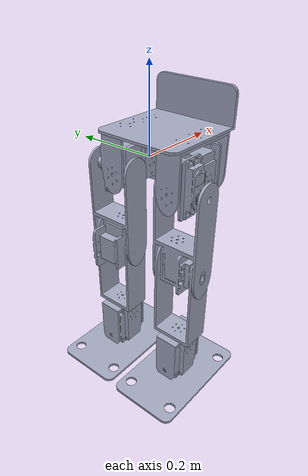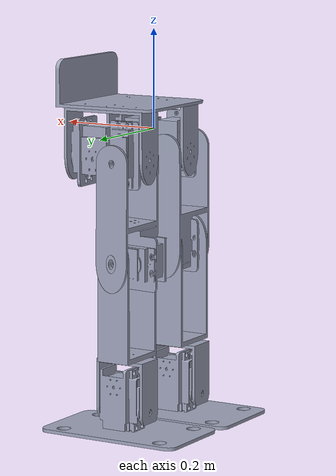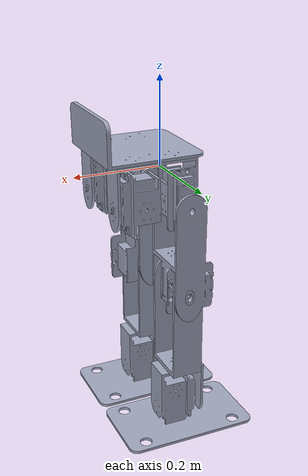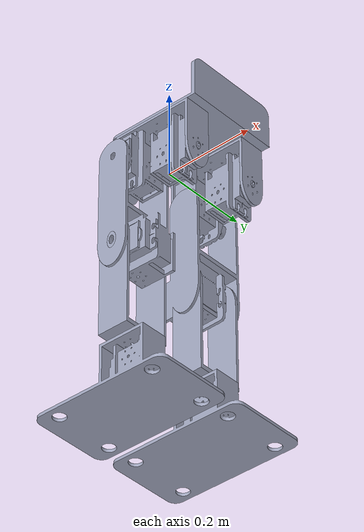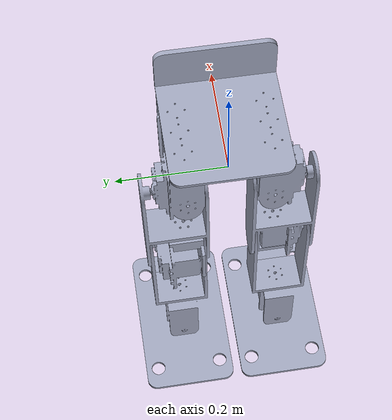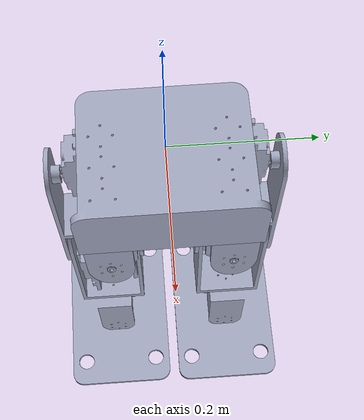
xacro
<?xml version="1.0"?>
<robot name="biped_payload_bot" xmlns:xacro="http://www.ros.org/wiki/xacro">

  <xacro:arg name="with_payload" default="true"/>
  <xacro:property name="with_payload" value="$(arg with_payload)"/>

  <!-- Appearance from Robot.STEP; all simulation parameters stay original. -->
  <xacro:include filename="cad_visuals.xacro"/>

  <xacro:include filename="inertia.xacro"/>
  <xacro:include filename="base.xacro"/>
  <xacro:include filename="leg.xacro"/>
  <xacro:include filename="sensors.xacro"/>
  <xacro:include filename="ros2_control.xacro"/>

  <!-- Hip lateral separation (ASSUMPTION, PROJECT_REQUIREMENTS §3;
       Robot.png comparison reads ~0.20 m) -->
  <xacro:property name="hip_y" value="0.10"/>

  <!-- Controllers YAML consumed by the gz_ros2_control plugin (M5). -->
  <xacro:property name="controllers_file"
                  value="$(find biped_control)/config/biped_controllers.yaml"/>

  <xacro:base with_payload="$(arg with_payload)"/>

  <xacro:leg prefix="left" hip_y="${hip_y}"/>
  <xacro:leg prefix="right" hip_y="${-hip_y}"/>

  <!-- M8 sensors (PROJECT_REQUIREMENTS §6): pelvis IMU + foot contacts.
       Topics match the ros_gz_bridge config in gazebo.launch.py. -->
  <xacro:imu_sensor imu_topic="/imu"/>
  <xacro:foot_contact_sensor prefix="left" contact_topic="/left_foot_contact"/>
  <xacro:foot_contact_sensor prefix="right" contact_topic="/right_foot_contact"/>

  <xacro:ros2_control_gazebo controllers_file="${controllers_file}"/>

</robot>

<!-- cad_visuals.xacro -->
<robot xmlns:xacro="http://www.ros.org/wiki/xacro">
  <!-- Robot.STEP tessellation fitted to the original simulation rig.
       Visual-only: never use these meshes for collision or inertia.
       See meshes/cad/manifest.json and docs/CAD_VISUALS.md. -->
  <!-- sdformat converts URDF colors with a 1.25 gain; compensate here
       so Gazebo receives the original STEP RGB values from manifest.json. -->
  <material name="cad_blue_grey">
    <color rgba="${0.8 * 0.792156862745098} ${0.8 * 0.819607843137255} ${0.8 * 0.933333333333333} 1"/>
  </material>
  <xacro:macro name="cad_visual" params="link">
    <visual name="${link}_cad_visual">
      <origin xyz="0 0 0" rpy="0 0 0"/>
      <geometry>
        <mesh filename="package://biped_description/meshes/cad/${link}.stl"/>
      </geometry>
      <material name="cad_blue_grey"/>
    </visual>
  </xacro:macro>
</robot>

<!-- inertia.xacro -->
<robot xmlns:xacro="http://www.ros.org/wiki/xacro">

  <xacro:property name="alu_density" value="2700.0"/>

  <xacro:macro name="box_inertial" params="m x y z ox:=0 oy:=0 oz:=0">
    <inertial>
      <mass value="${m}"/>
      <origin xyz="${ox} ${oy} ${oz}"/>
      <inertia ixx="${m*(y*y+z*z)/12.0}" ixy="0" ixz="0"
               iyy="${m*(x*x+z*z)/12.0}" iyz="0"
               izz="${m*(x*x+y*y)/12.0}"/>
    </inertial>
  </xacro:macro>

  <xacro:macro name="cylinder_inertial" params="m r h">
    <inertial>
      <mass value="${m}"/>
      <inertia ixx="${m*(3*r*r+h*h)/12.0}" ixy="0" ixz="0"
               iyy="${m*(3*r*r+h*h)/12.0}" iyz="0"
               izz="${m*r*r/2.0}"/>
    </inertial>
  </xacro:macro>

</robot>

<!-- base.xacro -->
<robot xmlns:xacro="http://www.ros.org/wiki/xacro">

  <xacro:property name="pelvis_w" value="0.20"/>
  <xacro:property name="pelvis_h" value="0.10"/>
  <xacro:property name="pelvis_d" value="0.20"/>
  <xacro:property name="pelvis_m" value="1.2"/>

  <xacro:property name="plat_w" value="0.28"/>
  <xacro:property name="plat_d" value="0.36"/>
  <xacro:property name="plat_t" value="0.03"/>
  <xacro:property name="plat_m" value="0.8"/>

  <xacro:property name="payload_w" value="0.14"/>
  <xacro:property name="payload_d" value="0.20"/>
  <xacro:property name="payload_h" value="0.11"/>
  <xacro:property name="payload_m" value="1.0"/>

  <!-- Height of pelvis frame above the hip roll axis -->
  <xacro:property name="pelvis_hip_drop" value="0.05"/>

  <xacro:macro name="base" params="with_payload:=true">
    <link name="base_link">
      <xacro:cad_visual link="base_link"/>
      <collision>
        <origin xyz="0 0 0"/>
        <geometry>
          <box size="${pelvis_w} ${pelvis_d} ${pelvis_h}"/>
        </geometry>
      </collision>
      <xacro:box_inertial m="${pelvis_m}" x="${pelvis_w}" y="${pelvis_d}" z="${pelvis_h}"/>
    </link>

    <joint name="platform_joint" type="fixed">
      <parent link="base_link"/>
      <child link="platform_link"/>
      <origin xyz="0 0 ${pelvis_h/2 + plat_t/2}"/>
    </joint>

    <link name="platform_link">
      <xacro:cad_visual link="platform_link"/>
      <collision>
        <origin xyz="0 0 0"/>
        <geometry>
          <box size="${plat_w} ${plat_d} ${plat_t}"/>
        </geometry>
      </collision>
      <xacro:box_inertial m="${plat_m}" x="${plat_w}" y="${plat_d}" z="${plat_t}"/>
    </link>

    <xacro:if value="${with_payload}">
      <joint name="payload_joint" type="fixed">
        <parent link="platform_link"/>
        <child link="payload_link"/>
        <origin xyz="0 0 ${plat_t/2 + payload_h/2}"/>
      </joint>

      <link name="payload_link">
        <!-- No payload object appears in Robot.STEP. Its physics is retained. -->
        <collision>
          <origin xyz="0 0 0"/>
          <geometry>
            <box size="${payload_w} ${payload_d} ${payload_h}"/>
          </geometry>
        </collision>
        <xacro:box_inertial m="${payload_m}" x="${payload_w}" y="${payload_d}" z="${payload_h}"/>
      </link>
    </xacro:if>
  </xacro:macro>

</robot>

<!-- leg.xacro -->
<robot xmlns:xacro="http://www.ros.org/wiki/xacro">

  <!-- Segment dimensions (ASSUMPTION) -->
  <xacro:property name="thigh_len" value="0.20"/>
  <xacro:property name="shin_len" value="0.20"/>
  <xacro:property name="ankle_h" value="0.15"/>

  <!-- Link cross-sections and masses (ASSUMPTION) -->
  <xacro:property name="thigh_w" value="0.06"/>
  <xacro:property name="thigh_d" value="0.05"/>
  <xacro:property name="thigh_m" value="0.55"/>
  <xacro:property name="shin_w" value="0.055"/>
  <xacro:property name="shin_d" value="0.045"/>
  <xacro:property name="shin_m" value="0.45"/>

  <!-- Foot: length X, width Y, height Z (ASSUMPTION) -->
  <xacro:property name="foot_len" value="0.16"/>
  <xacro:property name="foot_w" value="0.09"/>
  <xacro:property name="foot_h" value="0.03"/>
  <xacro:property name="foot_m" value="0.30"/>

  <!-- Actuator masses lumped into their parent links (ASSUMPTION) -->
  <xacro:property name="hip_act_m" value="0.40"/>
  <xacro:property name="knee_act_m" value="0.40"/>
  <xacro:property name="ankle_act_m" value="0.30"/>

  <xacro:property name="hip_roll_lim_deg" value="25"/>
  <xacro:property name="hip_pitch_lim_deg" value="90"/>
  <xacro:property name="knee_pitch_lim_deg" value="100"/>
  <xacro:property name="ankle_pitch_lim_deg" value="65"/>
  <xacro:property name="ankle_roll_lim_deg" value="25"/>
  <xacro:property name="joint_vel_lim" value="3.0"/>
  <xacro:property name="joint_eff_lim" value="40.0"/>

  <xacro:macro name="leg" params="prefix hip_y">

    <!-- hip_roll -> hip_pitch: co-located at the hip -->
    <joint name="${prefix}_hip_roll" type="revolute">
      <parent link="base_link"/>
      <child link="${prefix}_hip_pitch_link"/>
      <origin xyz="0 ${hip_y} ${-pelvis_hip_drop}"/>
      <axis xyz="1 0 0"/>
      <limit lower="${-hip_roll_lim_deg*pi/180.0}" upper="${hip_roll_lim_deg*pi/180.0}"
             effort="${joint_eff_lim}" velocity="${joint_vel_lim}"/>
      <!-- Passive damping/friction stand in for gearbox resistance until the
         drive controllers exist (M5). Values are ASSUMPTIONS. -->
      <dynamics damping="2.0" friction="1.0"/>
    </joint>

    <link name="${prefix}_hip_pitch_link">
      <xacro:cad_visual link="${prefix}_hip_pitch_link"/>
      <collision>
        <origin xyz="0 0 0"/>
        <geometry><cylinder radius="0.045" length="0.07"/></geometry>
      </collision>
      <xacro:cylinder_inertial m="${hip_act_m}" r="0.045" h="0.07"/>
    </link>

    <joint name="${prefix}_hip_pitch" type="revolute">
      <parent link="${prefix}_hip_pitch_link"/>
      <child link="${prefix}_thigh"/>
      <origin xyz="0 0 0"/>
      <axis xyz="0 1 0"/>
      <limit lower="${-hip_pitch_lim_deg*pi/180.0}" upper="${hip_pitch_lim_deg*pi/180.0}"
             effort="${joint_eff_lim}" velocity="${joint_vel_lim}"/>
      <dynamics damping="2.0" friction="1.0"/>
    </joint>

    <!-- Thigh: from hip down to knee -->
    <link name="${prefix}_thigh">
      <xacro:cad_visual link="${prefix}_thigh"/>
      <collision>
        <origin xyz="0 0 ${-thigh_len/2}"/>
        <geometry><box size="${thigh_w} ${thigh_d} ${thigh_len}"/></geometry>
      </collision>
      <xacro:box_inertial m="${thigh_m + knee_act_m}" x="${thigh_w}" y="${thigh_d}" z="${thigh_len}"
                          ox="0" oy="0" oz="${-thigh_len/2}"/>
    </link>

    <joint name="${prefix}_knee" type="revolute">
      <parent link="${prefix}_thigh"/>
      <child link="${prefix}_shin"/>
      <origin xyz="0 0 ${-thigh_len}"/>
      <axis xyz="0 1 0"/>
      <limit lower="0" upper="${knee_pitch_lim_deg*pi/180.0}"
             effort="${joint_eff_lim}" velocity="${joint_vel_lim}"/>
      <dynamics damping="2.0" friction="1.0"/>
    </joint>

    <!-- Shin: from knee down to ankle -->
    <link name="${prefix}_shin">
      <xacro:cad_visual link="${prefix}_shin"/>
      <collision>
        <origin xyz="0 0 ${-shin_len/2}"/>
        <geometry><box size="${shin_w} ${shin_d} ${shin_len}"/></geometry>
      </collision>
      <xacro:box_inertial m="${shin_m + ankle_act_m}" x="${shin_w}" y="${shin_d}" z="${shin_len}"
                          ox="0" oy="0" oz="${-shin_len/2}"/>
    </link>

    <joint name="${prefix}_ankle_pitch" type="revolute">
      <parent link="${prefix}_shin"/>
      <child link="${prefix}_ankle_roll_link"/>
      <origin xyz="0 0 ${-shin_len}"/>
      <axis xyz="0 1 0"/>
      <limit lower="${-ankle_pitch_lim_deg*pi/180.0}" upper="${ankle_pitch_lim_deg*pi/180.0}"
             effort="${joint_eff_lim}" velocity="${joint_vel_lim}"/>
      <dynamics damping="2.0" friction="1.0"/>
    </joint>

    <link name="${prefix}_ankle_roll_link">
      <!-- The CAD ankle assembly is included in the foot visual. -->
      <collision>
        <origin xyz="0 0 0"/>
        <geometry><cylinder radius="0.04" length="0.05"/></geometry>
      </collision>
      <xacro:cylinder_inertial m="${ankle_act_m}" r="0.04" h="0.05"/>
    </link>

    <joint name="${prefix}_ankle_roll" type="revolute">
      <parent link="${prefix}_ankle_roll_link"/>
      <child link="${prefix}_foot"/>
      <origin xyz="0 0 0"/>
      <axis xyz="1 0 0"/>
      <limit lower="${-ankle_roll_lim_deg*pi/180.0}" upper="${ankle_roll_lim_deg*pi/180.0}"
             effort="${joint_eff_lim}" velocity="${joint_vel_lim}"/>
      <dynamics damping="2.0" friction="1.0"/>
    </joint>

    <link name="${prefix}_foot">
      <xacro:cad_visual link="${prefix}_foot"/>
      <collision>
        <origin xyz="0.02 0 ${-ankle_h + foot_h/2}"/>
        <geometry><box size="${foot_len} ${foot_w} ${foot_h}"/></geometry>
      </collision>
      <xacro:box_inertial m="${foot_m}" x="${foot_len}" y="${foot_w}" z="${foot_h}"
                          ox="0.02" oy="0" oz="${-ankle_h + foot_h/2}"/>
    </link>
    <gazebo reference="${prefix}_foot">
      <mu1>1.0</mu1>
      <mu2>1.0</mu2>
      <contact>
        <ode>
          <kp>8e3</kp>
          <kd>35</kd>
          <max_vel>0</max_vel>
        </ode>
      </contact>
    </gazebo>

  </xacro:macro>

</robot>
